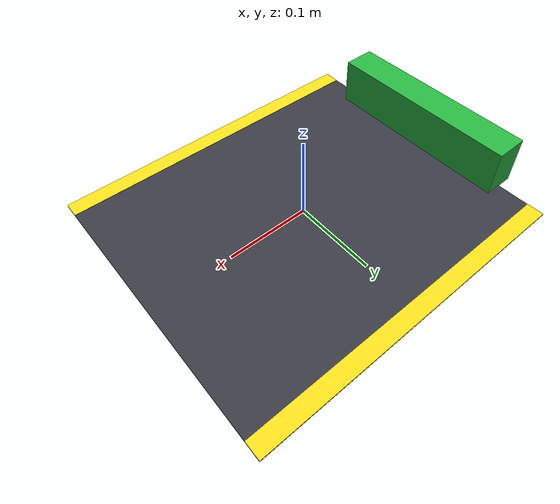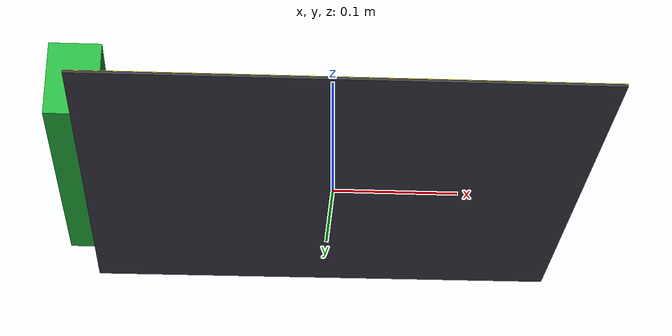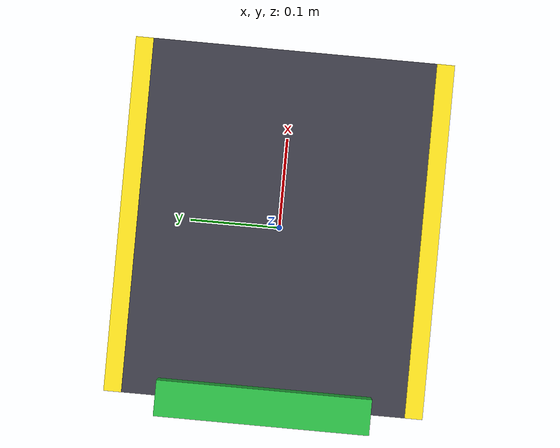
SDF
<?xml version="1.0" ?>
<sdf version="1.8">
  <model name="docking_station">
    <static>true</static>
    <link name="link">
      <!-- Main Docking Pad Surface -->
      <visual name="visual_pad">
        <pose>0 0 0.001 0 0 0</pose>
        <geometry>
          <box>
            <size>0.40 0.36 0.002</size>
          </box>
        </geometry>
        <material>
          <ambient>0.15 0.15 0.18 1.0</ambient>
          <diffuse>0.22 0.22 0.26 1.0</diffuse>
          <specular>0.3 0.3 0.3 1.0</specular>
        </material>
      </visual>

      <!-- Yellow/Amber Boundary Strip Left -->
      <visual name="visual_border_left">
        <pose>0 -0.17 0.0015 0 0 0</pose>
        <geometry>
          <box>
            <size>0.40 0.02 0.002</size>
          </box>
        </geometry>
        <material>
          <ambient>0.8 0.7 0.1 1.0</ambient>
          <diffuse>0.95 0.85 0.1 1.0</diffuse>
        </material>
      </visual>

      <!-- Yellow/Amber Boundary Strip Right -->
      <visual name="visual_border_right">
        <pose>0 0.17 0.0015 0 0 0</pose>
        <geometry>
          <box>
            <size>0.40 0.02 0.002</size>
          </box>
        </geometry>
        <material>
          <ambient>0.8 0.7 0.1 1.0</ambient>
          <diffuse>0.95 0.85 0.1 1.0</diffuse>
        </material>
      </visual>

      <!-- Rear Docking Contact Stand -->
      <visual name="visual_dock_back">
        <pose>-0.20 0 0.03 0 0 0</pose>
        <geometry>
          <box>
            <size>0.04 0.24 0.06</size>
          </box>
        </geometry>
        <material>
          <ambient>0.1 0.5 0.2 1.0</ambient>
          <diffuse>0.15 0.7 0.25 1.0</diffuse>
        </material>
      </visual>
      <collision name="collision_dock_back">
        <pose>-0.20 0 0.03 0 0 0</pose>
        <geometry>
          <box>
            <size>0.04 0.24 0.06</size>
          </box>
        </geometry>
      </collision>
    </link>
  </model>
</sdf>
